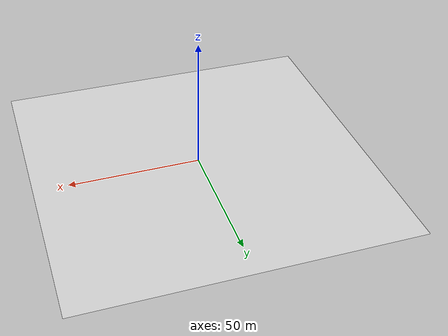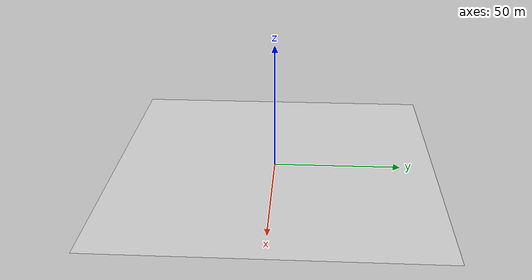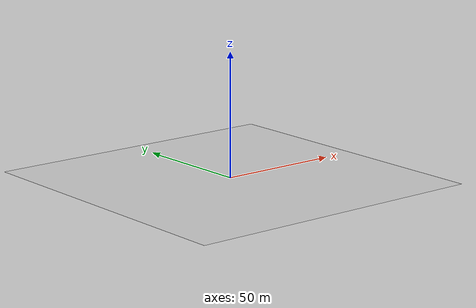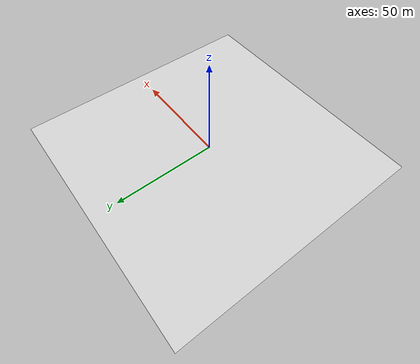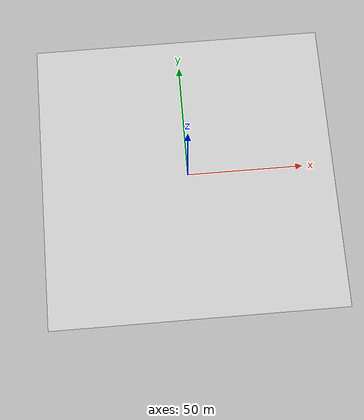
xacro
<robot name="robot">
  <link name="cottage_blender_ground_link">
    <inertial>
      <origin xyz="0 0 0" rpy="0 0 0" />
      <mass value="1" />
      <inertia ixx="1" ixy="0" ixz="0" iyy="1" iyz="0" izz="1" />
    </inertial>
    <visual>
      <origin xyz="0 0 0" rpy="0 0 0" />
      <geometry>
        <mesh filename="package://cottage_gazebo/meshes/cottage_blender_ground.dae" />
      </geometry>
    </visual>
    <collision>
      <origin xyz="0 0 0" rpy="0 0 0" />
      <geometry>
        <mesh filename="package://cottage_gazebo/meshes/cottage_blender_ground.dae" />
      </geometry>
    </collision>
  </link>

  <gazebo reference="cottage_blender_ground_link">
    <material>cottage_texture</material>
  </gazebo>

  <gazebo> <static>true</static></gazebo>
</robot>
